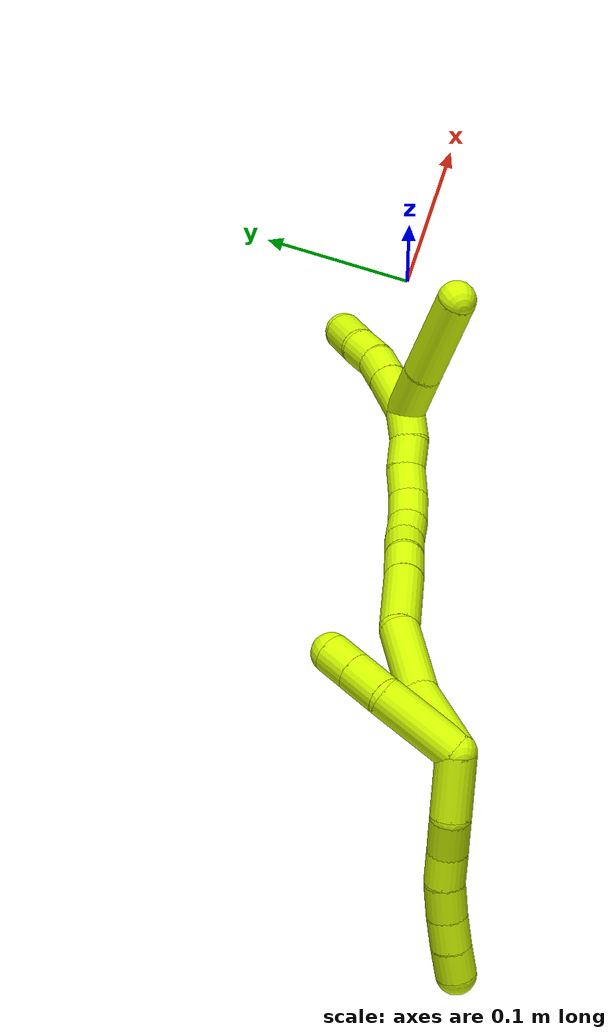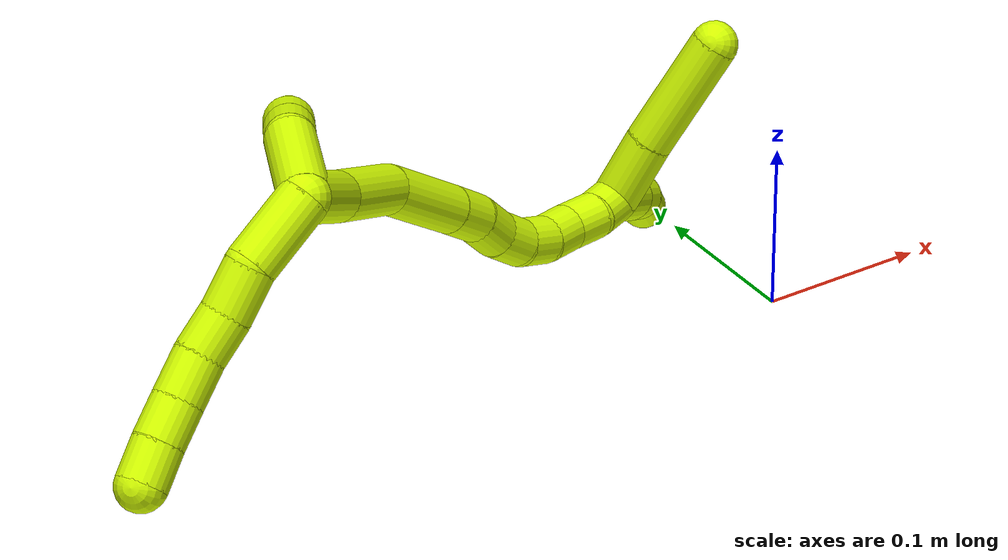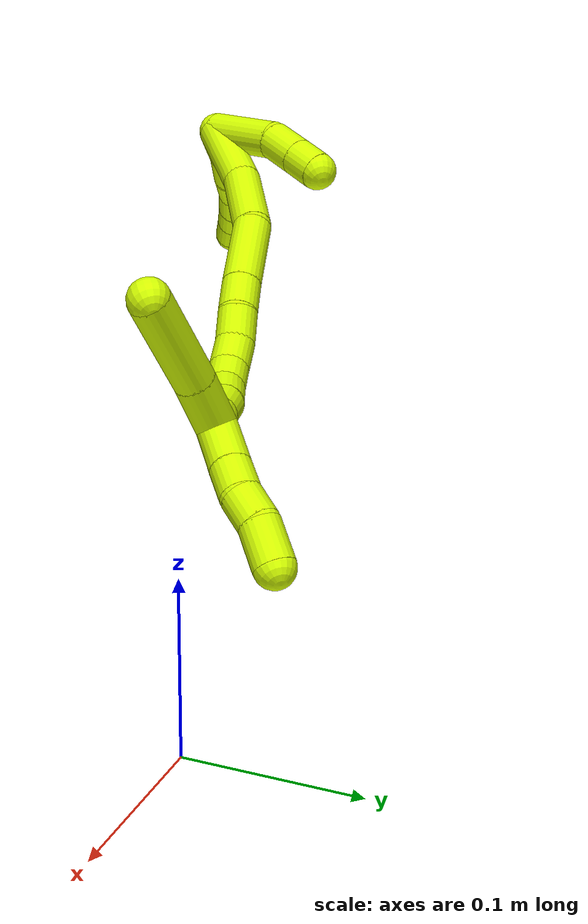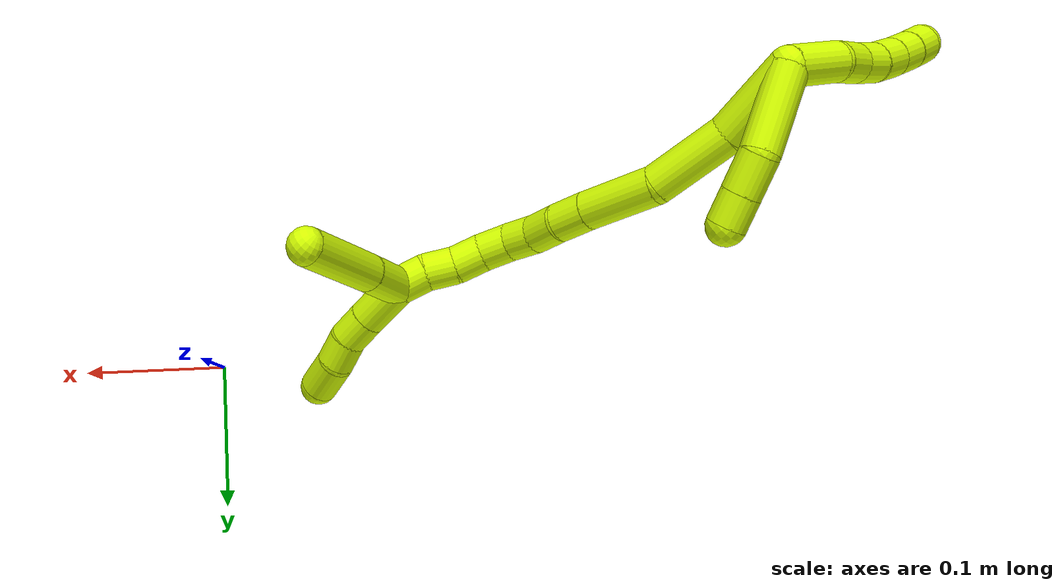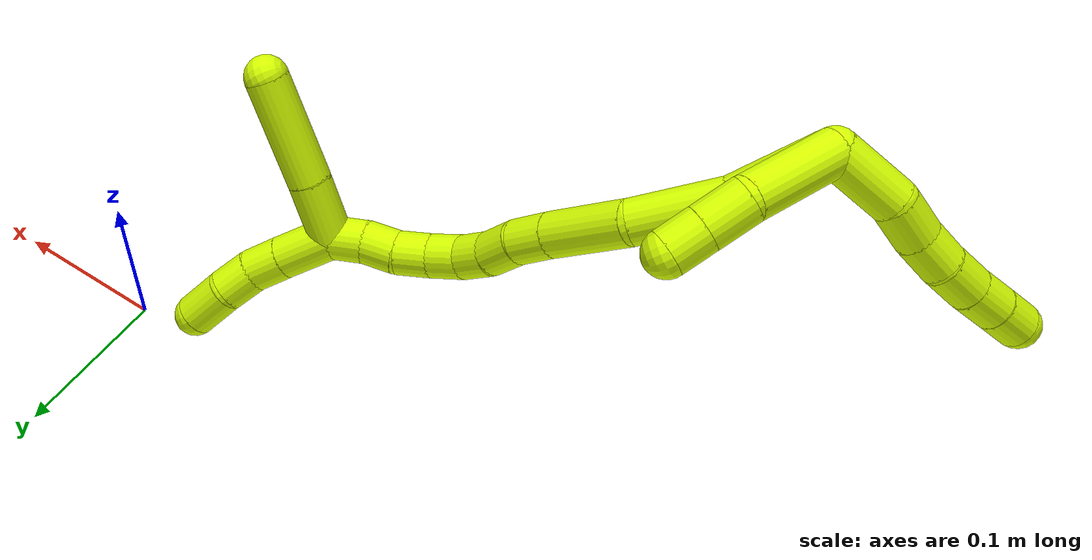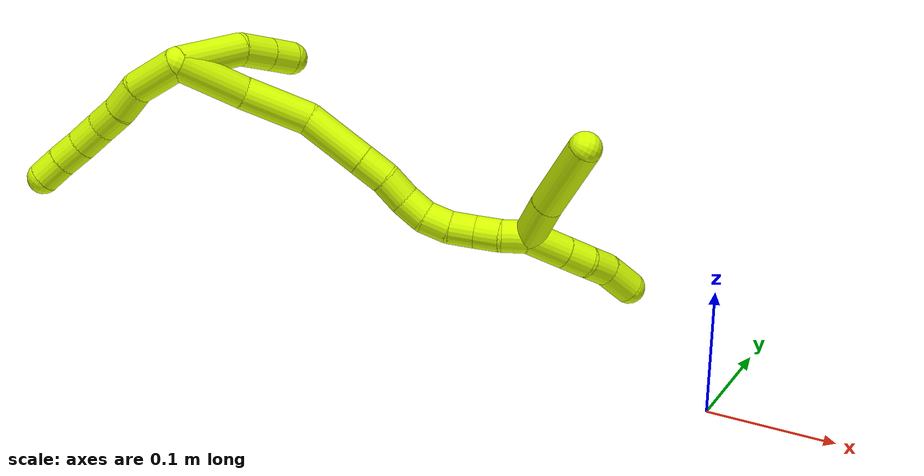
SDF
<sdf version="1.7">
 <world name="default">
  <model name="15">
   <static>0</static>
   <link name="15">
    <collision name="collision-cylinder-e_1_2_8">
     <pose>-0.012814 -0.013511 0.007282 1.07643 -0.695674 -0.426348</pose>
     <geometry><cylinder><radius>0.0125</radius><length>0.039989</length></cylinder></geometry>
     <surface>
      <friction><ode><mu>1.16</mu><mu2>1.16</mu2><slip1>0</slip1><slip2>0</slip2></ode></friction>
      <contact><ode><kp>1e+06</kp><kd>1</kd><max_vel>0</max_vel><min_depth>0.001</min_depth></ode></contact>
     </surface>
    </collision>
    <visual name="visual-cylinder-e_1_2_8">
     <pose>-0.012814 -0.013511 0.007282 1.07643 -0.695674 -0.426348</pose>
     <geometry><cylinder><radius>0.0125</radius><length>0.039989</length></cylinder></geometry>
     <material><ambient>0.835294 1 0 1</ambient></material>
    </visual>
    <collision name="collision-cylinder-e_2_8_9">
     <pose>-0.032824 -0.037021 0.015845 1.44344 -0.619861 -0.54946</pose>
     <geometry><cylinder><radius>0.0125</radius><length>0.024772</length></cylinder></geometry>
     <surface>
      <friction><ode><mu>1.16</mu><mu2>1.16</mu2><slip1>0</slip1><slip2>0</slip2></ode></friction>
      <contact><ode><kp>1e+06</kp><kd>1</kd><max_vel>0</max_vel><min_depth>0.001</min_depth></ode></contact>
     </surface>
    </collision>
    <visual name="visual-cylinder-e_2_8_9">
     <pose>-0.032824 -0.037021 0.015845 1.44344 -0.619861 -0.54946</pose>
     <geometry><cylinder><radius>0.0125</radius><length>0.024772</length></cylinder></geometry>
     <material><ambient>0.835294 1 0 1</ambient></material>
    </visual>
    <collision name="collision-cylinder-e_3_9_10">
     <pose>-0.046743 -0.055071 0.019637 1.26838 -0.673101 -0.503752</pose>
     <geometry><cylinder><radius>0.0125</radius><length>0.02157</length></cylinder></geometry>
     <surface>
      <friction><ode><mu>1.16</mu><mu2>1.16</mu2><slip1>0</slip1><slip2>0</slip2></ode></friction>
      <contact><ode><kp>1e+06</kp><kd>1</kd><max_vel>0</max_vel><min_depth>0.001</min_depth></ode></contact>
     </surface>
    </collision>
    <visual name="visual-cylinder-e_3_9_10">
     <pose>-0.046743 -0.055071 0.019637 1.26838 -0.673101 -0.503752</pose>
     <geometry><cylinder><radius>0.0125</radius><length>0.02157</length></cylinder></geometry>
     <material><ambient>0.835294 1 0 1</ambient></material>
    </visual>
    <collision name="collision-cylinder-e_4_10_11">
     <pose>-0.05908 -0.072346 0.025241 1.24735 -0.523264 -0.380641</pose>
     <geometry><cylinder><radius>0.0125</radius><length>0.022464</length></cylinder></geometry>
     <surface>
      <friction><ode><mu>1.16</mu><mu2>1.16</mu2><slip1>0</slip1><slip2>0</slip2></ode></friction>
      <contact><ode><kp>1e+06</kp><kd>1</kd><max_vel>0</max_vel><min_depth>0.001</min_depth></ode></contact>
     </surface>
    </collision>
    <visual name="visual-cylinder-e_4_10_11">
     <pose>-0.05908 -0.072346 0.025241 1.24735 -0.523264 -0.380641</pose>
     <geometry><cylinder><radius>0.0125</radius><length>0.022464</length></cylinder></geometry>
     <material><ambient>0.835294 1 0 1</ambient></material>
    </visual>
    <collision name="collision-cylinder-e_5_11_12">
     <pose>-0.069505 -0.090099 0.031776 1.18712 -0.482115 -0.328754</pose>
     <geometry><cylinder><radius>0.0125</radius><length>0.020761</length></cylinder></geometry>
     <surface>
      <friction><ode><mu>1.16</mu><mu2>1.16</mu2><slip1>0</slip1><slip2>0</slip2></ode></friction>
      <contact><ode><kp>1e+06</kp><kd>1</kd><max_vel>0</max_vel><min_depth>0.001</min_depth></ode></contact>
     </surface>
    </collision>
    <visual name="visual-cylinder-e_5_11_12">
     <pose>-0.069505 -0.090099 0.031776 1.18712 -0.482115 -0.328754</pose>
     <geometry><cylinder><radius>0.0125</radius><length>0.020761</length></cylinder></geometry>
     <material><ambient>0.835294 1 0 1</ambient></material>
    </visual>
    <collision name="collision-cylinder-e_6_12_6">
     <pose>-0.078654 -0.107349 0.038322 1.22891 -0.438056 -0.311573</pose>
     <geometry><cylinder><radius>0.0125</radius><length>0.020444</length></cylinder></geometry>
     <surface>
      <friction><ode><mu>1.16</mu><mu2>1.16</mu2><slip1>0</slip1><slip2>0</slip2></ode></friction>
      <contact><ode><kp>1e+06</kp><kd>1</kd><max_vel>0</max_vel><min_depth>0.001</min_depth></ode></contact>
     </surface>
    </collision>
    <visual name="visual-cylinder-e_6_12_6">
     <pose>-0.078654 -0.107349 0.038322 1.22891 -0.438056 -0.311573</pose>
     <geometry><cylinder><radius>0.0125</radius><length>0.020444</length></cylinder></geometry>
     <material><ambient>0.835294 1 0 1</ambient></material>
    </visual>
    <collision name="collision-cylinder-e_1_2_13">
     <pose>-0.008283 0.015268 -0.020802 -2.50843 -0.310614 0.891669</pose>
     <geometry><cylinder><radius>0.0125</radius><length>0.054201</length></cylinder></geometry>
     <surface>
      <friction><ode><mu>1.16</mu><mu2>1.16</mu2><slip1>0</slip1><slip2>0</slip2></ode></friction>
      <contact><ode><kp>1e+06</kp><kd>1</kd><max_vel>0</max_vel><min_depth>0.001</min_depth></ode></contact>
     </surface>
    </collision>
    <visual name="visual-cylinder-e_1_2_13">
     <pose>-0.008283 0.015268 -0.020802 -2.50843 -0.310614 0.891669</pose>
     <geometry><cylinder><radius>0.0125</radius><length>0.054201</length></cylinder></geometry>
     <material><ambient>0.835294 1 0 1</ambient></material>
    </visual>
    <collision name="collision-cylinder-e_2_13_14">
     <pose>-0.020344 0.033878 -0.053236 -2.86185 -0.302528 1.65014</pose>
     <geometry><cylinder><radius>0.0125</radius><length>0.025357</length></cylinder></geometry>
     <surface>
      <friction><ode><mu>1.16</mu><mu2>1.16</mu2><slip1>0</slip1><slip2>0</slip2></ode></friction>
      <contact><ode><kp>1e+06</kp><kd>1</kd><max_vel>0</max_vel><min_depth>0.001</min_depth></ode></contact>
     </surface>
    </collision>
    <visual name="visual-cylinder-e_2_13_14">
     <pose>-0.020344 0.033878 -0.053236 -2.86185 -0.302528 1.65014</pose>
     <geometry><cylinder><radius>0.0125</radius><length>0.025357</length></cylinder></geometry>
     <material><ambient>0.835294 1 0 1</ambient></material>
    </visual>
    <collision name="collision-cylinder-e_3_14_5">
     <pose>-0.027172 0.039838 -0.074265 -2.86979 -0.303176 1.68132</pose>
     <geometry><cylinder><radius>0.0125</radius><length>0.020442</length></cylinder></geometry>
     <surface>
      <friction><ode><mu>1.16</mu><mu2>1.16</mu2><slip1>0</slip1><slip2>0</slip2></ode></friction>
      <contact><ode><kp>1e+06</kp><kd>1</kd><max_vel>0</max_vel><min_depth>0.001</min_depth></ode></contact>
     </surface>
    </collision>
    <visual name="visual-cylinder-e_3_14_5">
     <pose>-0.027172 0.039838 -0.074265 -2.86979 -0.303176 1.68132</pose>
     <geometry><cylinder><radius>0.0125</radius><length>0.020442</length></cylinder></geometry>
     <material><ambient>0.835294 1 0 1</ambient></material>
    </visual>
    <collision name="collision-cylinder-e_1_2_15">
     <pose>-0.00149 0.000555 -0.026801 -3.1209 -0.055523 2.42829</pose>
     <geometry><cylinder><radius>0.0125</radius><length>0.053697</length></cylinder></geometry>
     <surface>
      <friction><ode><mu>1.16</mu><mu2>1.16</mu2><slip1>0</slip1><slip2>0</slip2></ode></friction>
      <contact><ode><kp>1e+06</kp><kd>1</kd><max_vel>0</max_vel><min_depth>0.001</min_depth></ode></contact>
     </surface>
    </collision>
    <visual name="visual-cylinder-e_1_2_15">
     <pose>-0.00149 0.000555 -0.026801 -3.1209 -0.055523 2.42829</pose>
     <geometry><cylinder><radius>0.0125</radius><length>0.053697</length></cylinder></geometry>
     <material><ambient>0.835294 1 0 1</ambient></material>
    </visual>
    <collision name="collision-cylinder-e_2_15_16">
     <pose>0.001627 0.002286 -0.079423 -3.09607 0.176372 -2.63754</pose>
     <geometry><cylinder><radius>0.0125</radius><length>0.052509</length></cylinder></geometry>
     <surface>
      <friction><ode><mu>1.16</mu><mu2>1.16</mu2><slip1>0</slip1><slip2>0</slip2></ode></friction>
      <contact><ode><kp>1e+06</kp><kd>1</kd><max_vel>0</max_vel><min_depth>0.001</min_depth></ode></contact>
     </surface>
    </collision>
    <visual name="visual-cylinder-e_2_15_16">
     <pose>0.001627 0.002286 -0.079423 -3.09607 0.176372 -2.63754</pose>
     <geometry><cylinder><radius>0.0125</radius><length>0.052509</length></cylinder></geometry>
     <material><ambient>0.835294 1 0 1</ambient></material>
    </visual>
    <collision name="collision-cylinder-e_3_16_17">
     <pose>0.014084 -0.002639 -0.127937 2.87899 0.322431 1.77749</pose>
     <geometry><cylinder><radius>0.0125</radius><length>0.049553</length></cylinder></geometry>
     <surface>
      <friction><ode><mu>1.16</mu><mu2>1.16</mu2><slip1>0</slip1><slip2>0</slip2></ode></friction>
      <contact><ode><kp>1e+06</kp><kd>1</kd><max_vel>0</max_vel><min_depth>0.001</min_depth></ode></contact>
     </surface>
    </collision>
    <visual name="visual-cylinder-e_3_16_17">
     <pose>0.014084 -0.002639 -0.127937 2.87899 0.322431 1.77749</pose>
     <geometry><cylinder><radius>0.0125</radius><length>0.049553</length></cylinder></geometry>
     <material><ambient>0.835294 1 0 1</ambient></material>
    </visual>
    <collision name="collision-cylinder-e_4_17_18">
     <pose>0.025064 -0.011512 -0.161147 2.88381 0.280152 1.65492</pose>
     <geometry><cylinder><radius>0.0125</radius><length>0.022632</length></cylinder></geometry>
     <surface>
      <friction><ode><mu>1.16</mu><mu2>1.16</mu2><slip1>0</slip1><slip2>0</slip2></ode></friction>
      <contact><ode><kp>1e+06</kp><kd>1</kd><max_vel>0</max_vel><min_depth>0.001</min_depth></ode></contact>
     </surface>
    </collision>
    <visual name="visual-cylinder-e_4_17_18">
     <pose>0.025064 -0.011512 -0.161147 2.88381 0.280152 1.65492</pose>
     <geometry><cylinder><radius>0.0125</radius><length>0.022632</length></cylinder></geometry>
     <material><ambient>0.835294 1 0 1</ambient></material>
    </visual>
    <collision name="collision-cylinder-e_5_18_19">
     <pose>0.029975 -0.018563 -0.181416 2.72813 0.165728 0.754125</pose>
     <geometry><cylinder><radius>0.0125</radius><length>0.021599</length></cylinder></geometry>
     <surface>
      <friction><ode><mu>1.16</mu><mu2>1.16</mu2><slip1>0</slip1><slip2>0</slip2></ode></friction>
      <contact><ode><kp>1e+06</kp><kd>1</kd><max_vel>0</max_vel><min_depth>0.001</min_depth></ode></contact>
     </surface>
    </collision>
    <visual name="visual-cylinder-e_5_18_19">
     <pose>0.029975 -0.018563 -0.181416 2.72813 0.165728 0.754125</pose>
     <geometry><cylinder><radius>0.0125</radius><length>0.021599</length></cylinder></geometry>
     <material><ambient>0.835294 1 0 1</ambient></material>
    </visual>
    <collision name="collision-cylinder-e_6_19_20">
     <pose>0.035151 -0.025798 -0.200103 2.82208 0.346234 1.65252</pose>
     <geometry><cylinder><radius>0.0125</radius><length>0.020005</length></cylinder></geometry>
     <surface>
      <friction><ode><mu>1.16</mu><mu2>1.16</mu2><slip1>0</slip1><slip2>0</slip2></ode></friction>
      <contact><ode><kp>1e+06</kp><kd>1</kd><max_vel>0</max_vel><min_depth>0.001</min_depth></ode></contact>
     </surface>
    </collision>
    <visual name="visual-cylinder-e_6_19_20">
     <pose>0.035151 -0.025798 -0.200103 2.82208 0.346234 1.65252</pose>
     <geometry><cylinder><radius>0.0125</radius><length>0.020005</length></cylinder></geometry>
     <material><ambient>0.835294 1 0 1</ambient></material>
    </visual>
    <collision name="collision-cylinder-e_7_20_21">
     <pose>0.042728 -0.028713 -0.218121 -3.13713 0.431515 -3.12125</pose>
     <geometry><cylinder><radius>0.0125</radius><length>0.020004</length></cylinder></geometry>
     <surface>
      <friction><ode><mu>1.16</mu><mu2>1.16</mu2><slip1>0</slip1><slip2>0</slip2></ode></friction>
      <contact><ode><kp>1e+06</kp><kd>1</kd><max_vel>0</max_vel><min_depth>0.001</min_depth></ode></contact>
     </surface>
    </collision>
    <visual name="visual-cylinder-e_7_20_21">
     <pose>0.042728 -0.028713 -0.218121 -3.13713 0.431515 -3.12125</pose>
     <geometry><cylinder><radius>0.0125</radius><length>0.020004</length></cylinder></geometry>
     <material><ambient>0.835294 1 0 1</ambient></material>
    </visual>
    <collision name="collision-cylinder-e_8_21_22">
     <pose>0.051029 -0.026303 -0.236006 -2.87854 0.424351 -2.04012</pose>
     <geometry><cylinder><radius>0.0125</radius><length>0.020001</length></cylinder></geometry>
     <surface>
      <friction><ode><mu>1.16</mu><mu2>1.16</mu2><slip1>0</slip1><slip2>0</slip2></ode></friction>
      <contact><ode><kp>1e+06</kp><kd>1</kd><max_vel>0</max_vel><min_depth>0.001</min_depth></ode></contact>
     </surface>
    </collision>
    <visual name="visual-cylinder-e_8_21_22">
     <pose>0.051029 -0.026303 -0.236006 -2.87854 0.424351 -2.04012</pose>
     <geometry><cylinder><radius>0.0125</radius><length>0.020001</length></cylinder></geometry>
     <material><ambient>0.835294 1 0 1</ambient></material>
    </visual>
    <collision name="collision-cylinder-e_9_22_23">
     <pose>0.061133 -0.021625 -0.252476 -2.8493 0.641842 -2.30788</pose>
     <geometry><cylinder><radius>0.0125</radius><length>0.02</length></cylinder></geometry>
     <surface>
      <friction><ode><mu>1.16</mu><mu2>1.16</mu2><slip1>0</slip1><slip2>0</slip2></ode></friction>
      <contact><ode><kp>1e+06</kp><kd>1</kd><max_vel>0</max_vel><min_depth>0.001</min_depth></ode></contact>
     </surface>
    </collision>
    <visual name="visual-cylinder-e_9_22_23">
     <pose>0.061133 -0.021625 -0.252476 -2.8493 0.641842 -2.30788</pose>
     <geometry><cylinder><radius>0.0125</radius><length>0.02</length></cylinder></geometry>
     <material><ambient>0.835294 1 0 1</ambient></material>
    </visual>
    <collision name="collision-cylinder-e_10_23_1">
     <pose>0.071177 -0.015705 -0.268542 -2.73532 0.417745 -1.59943</pose>
     <geometry><cylinder><radius>0.0125</radius><length>0.020001</length></cylinder></geometry>
     <surface>
      <friction><ode><mu>1.16</mu><mu2>1.16</mu2><slip1>0</slip1><slip2>0</slip2></ode></friction>
      <contact><ode><kp>1e+06</kp><kd>1</kd><max_vel>0</max_vel><min_depth>0.001</min_depth></ode></contact>
     </surface>
    </collision>
    <visual name="visual-cylinder-e_10_23_1">
     <pose>0.071177 -0.015705 -0.268542 -2.73532 0.417745 -1.59943</pose>
     <geometry><cylinder><radius>0.0125</radius><length>0.020001</length></cylinder></geometry>
     <material><ambient>0.835294 1 0 1</ambient></material>
    </visual>
    <collision name="collision-cylinder-e_1_1_24">
     <pose>0.087847 0.000946 -0.272991 -1.27677 0.746922 -0.565931</pose>
     <geometry><cylinder><radius>0.0125</radius><length>0.03713</length></cylinder></geometry>
     <surface>
      <friction><ode><mu>1.16</mu><mu2>1.16</mu2><slip1>0</slip1><slip2>0</slip2></ode></friction>
      <contact><ode><kp>1e+06</kp><kd>1</kd><max_vel>0</max_vel><min_depth>0.001</min_depth></ode></contact>
     </surface>
    </collision>
    <visual name="visual-cylinder-e_1_1_24">
     <pose>0.087847 0.000946 -0.272991 -1.27677 0.746922 -0.565931</pose>
     <geometry><cylinder><radius>0.0125</radius><length>0.03713</length></cylinder></geometry>
     <material><ambient>0.835294 1 0 1</ambient></material>
    </visual>
    <collision name="collision-cylinder-e_2_24_4">
     <pose>0.122914 0.03531 -0.263644 -1.32288 0.795625 -0.632264</pose>
     <geometry><cylinder><radius>0.0125</radius><length>0.06287</length></cylinder></geometry>
     <surface>
      <friction><ode><mu>1.16</mu><mu2>1.16</mu2><slip1>0</slip1><slip2>0</slip2></ode></friction>
      <contact><ode><kp>1e+06</kp><kd>1</kd><max_vel>0</max_vel><min_depth>0.001</min_depth></ode></contact>
     </surface>
    </collision>
    <visual name="visual-cylinder-e_2_24_4">
     <pose>0.122914 0.03531 -0.263644 -1.32288 0.795625 -0.632264</pose>
     <geometry><cylinder><radius>0.0125</radius><length>0.06287</length></cylinder></geometry>
     <material><ambient>0.835294 1 0 1</ambient></material>
    </visual>
    <collision name="collision-cylinder-e_1_1_25">
     <pose>0.075617 -0.011594 -0.292962 -3.11046 0.023854 -1.30766</pose>
     <geometry><cylinder><radius>0.0125</radius><length>0.03207</length></cylinder></geometry>
     <surface>
      <friction><ode><mu>1.16</mu><mu2>1.16</mu2><slip1>0</slip1><slip2>0</slip2></ode></friction>
      <contact><ode><kp>1e+06</kp><kd>1</kd><max_vel>0</max_vel><min_depth>0.001</min_depth></ode></contact>
     </surface>
    </collision>
    <visual name="visual-cylinder-e_1_1_25">
     <pose>0.075617 -0.011594 -0.292962 -3.11046 0.023854 -1.30766</pose>
     <geometry><cylinder><radius>0.0125</radius><length>0.03207</length></cylinder></geometry>
     <material><ambient>0.835294 1 0 1</ambient></material>
    </visual>
    <collision name="collision-cylinder-e_2_25_26">
     <pose>0.07601 -0.010738 -0.319374 -3.10726 0.001019 -0.059335</pose>
     <geometry><cylinder><radius>0.0125</radius><length>0.020791</length></cylinder></geometry>
     <surface>
      <friction><ode><mu>1.16</mu><mu2>1.16</mu2><slip1>0</slip1><slip2>0</slip2></ode></friction>
      <contact><ode><kp>1e+06</kp><kd>1</kd><max_vel>0</max_vel><min_depth>0.001</min_depth></ode></contact>
     </surface>
    </collision>
    <visual name="visual-cylinder-e_2_25_26">
     <pose>0.07601 -0.010738 -0.319374 -3.10726 0.001019 -0.059335</pose>
     <geometry><cylinder><radius>0.0125</radius><length>0.020791</length></cylinder></geometry>
     <material><ambient>0.835294 1 0 1</ambient></material>
    </visual>
    <collision name="collision-cylinder-e_3_26_27">
     <pose>0.073637 -0.009818 -0.339703 -3.08498 -0.234961 2.67072</pose>
     <geometry><cylinder><radius>0.0125</radius><length>0.020474</length></cylinder></geometry>
     <surface>
      <friction><ode><mu>1.16</mu><mu2>1.16</mu2><slip1>0</slip1><slip2>0</slip2></ode></friction>
      <contact><ode><kp>1e+06</kp><kd>1</kd><max_vel>0</max_vel><min_depth>0.001</min_depth></ode></contact>
     </surface>
    </collision>
    <visual name="visual-cylinder-e_3_26_27">
     <pose>0.073637 -0.009818 -0.339703 -3.08498 -0.234961 2.67072</pose>
     <geometry><cylinder><radius>0.0125</radius><length>0.020474</length></cylinder></geometry>
     <material><ambient>0.835294 1 0 1</ambient></material>
    </visual>
    <collision name="collision-cylinder-e_4_27_3">
     <pose>0.069224 -0.011667 -0.362597 2.95745 -0.152868 -1.38487</pose>
     <geometry><cylinder><radius>0.0125</radius><length>0.026665</length></cylinder></geometry>
     <surface>
      <friction><ode><mu>1.16</mu><mu2>1.16</mu2><slip1>0</slip1><slip2>0</slip2></ode></friction>
      <contact><ode><kp>1e+06</kp><kd>1</kd><max_vel>0</max_vel><min_depth>0.001</min_depth></ode></contact>
     </surface>
    </collision>
    <visual name="visual-cylinder-e_4_27_3">
     <pose>0.069224 -0.011667 -0.362597 2.95745 -0.152868 -1.38487</pose>
     <geometry><cylinder><radius>0.0125</radius><length>0.026665</length></cylinder></geometry>
     <material><ambient>0.835294 1 0 1</ambient></material>
    </visual>
    <collision name="collision-sphere-3">
     <pose>0.067194 -0.01408 -0.375551 0 -0 0</pose>
     <geometry><sphere><radius>0.0125</radius></sphere></geometry>
     <surface>
      <friction><ode><mu>1.16</mu><mu2>1.16</mu2><slip1>0</slip1><slip2>0</slip2></ode></friction>
      <contact><ode><kp>1e+06</kp><kd>1</kd><max_vel>0</max_vel><min_depth>0.001</min_depth></ode></contact>
     </surface>
    </collision>
    <visual name="visual-sphere-3">
     <pose>0.067194 -0.01408 -0.375551 0 -0 0</pose>
     <geometry><sphere><radius>0.0125</radius></sphere></geometry>
     <material><ambient>0.835294 1 0 1</ambient></material>
    </visual>
    <collision name="collision-sphere-27">
     <pose>0.071254 -0.009254 -0.349643 0 -0 0</pose>
     <geometry><sphere><radius>0.0125</radius></sphere></geometry>
     <surface>
      <friction><ode><mu>1.16</mu><mu2>1.16</mu2><slip1>0</slip1><slip2>0</slip2></ode></friction>
      <contact><ode><kp>1e+06</kp><kd>1</kd><max_vel>0</max_vel><min_depth>0.001</min_depth></ode></contact>
     </surface>
    </collision>
    <visual name="visual-sphere-27">
     <pose>0.071254 -0.009254 -0.349643 0 -0 0</pose>
     <geometry><sphere><radius>0.0125</radius></sphere></geometry>
     <material><ambient>0.835294 1 0 1</ambient></material>
    </visual>
    <collision name="collision-sphere-26">
     <pose>0.07602 -0.010381 -0.329763 0 -0 0</pose>
     <geometry><sphere><radius>0.0125</radius></sphere></geometry>
     <surface>
      <friction><ode><mu>1.16</mu><mu2>1.16</mu2><slip1>0</slip1><slip2>0</slip2></ode></friction>
      <contact><ode><kp>1e+06</kp><kd>1</kd><max_vel>0</max_vel><min_depth>0.001</min_depth></ode></contact>
     </surface>
    </collision>
    <visual name="visual-sphere-26">
     <pose>0.07602 -0.010381 -0.329763 0 -0 0</pose>
     <geometry><sphere><radius>0.0125</radius></sphere></geometry>
     <material><ambient>0.835294 1 0 1</ambient></material>
    </visual>
    <collision name="collision-sphere-25">
     <pose>0.075999 -0.011095 -0.308984 0 -0 0</pose>
     <geometry><sphere><radius>0.0125</radius></sphere></geometry>
     <surface>
      <friction><ode><mu>1.16</mu><mu2>1.16</mu2><slip1>0</slip1><slip2>0</slip2></ode></friction>
      <contact><ode><kp>1e+06</kp><kd>1</kd><max_vel>0</max_vel><min_depth>0.001</min_depth></ode></contact>
     </surface>
    </collision>
    <visual name="visual-sphere-25">
     <pose>0.075999 -0.011095 -0.308984 0 -0 0</pose>
     <geometry><sphere><radius>0.0125</radius></sphere></geometry>
     <material><ambient>0.835294 1 0 1</ambient></material>
    </visual>
    <collision name="collision-sphere-4">
     <pose>0.145368 0.056637 -0.258246 0 -0 0</pose>
     <geometry><sphere><radius>0.0125</radius></sphere></geometry>
     <surface>
      <friction><ode><mu>1.16</mu><mu2>1.16</mu2><slip1>0</slip1><slip2>0</slip2></ode></friction>
      <contact><ode><kp>1e+06</kp><kd>1</kd><max_vel>0</max_vel><min_depth>0.001</min_depth></ode></contact>
     </surface>
    </collision>
    <visual name="visual-sphere-4">
     <pose>0.145368 0.056637 -0.258246 0 -0 0</pose>
     <geometry><sphere><radius>0.0125</radius></sphere></geometry>
     <material><ambient>0.835294 1 0 1</ambient></material>
    </visual>
    <collision name="collision-sphere-24">
     <pose>0.10046 0.013984 -0.269043 0 -0 0</pose>
     <geometry><sphere><radius>0.0125</radius></sphere></geometry>
     <surface>
      <friction><ode><mu>1.16</mu><mu2>1.16</mu2><slip1>0</slip1><slip2>0</slip2></ode></friction>
      <contact><ode><kp>1e+06</kp><kd>1</kd><max_vel>0</max_vel><min_depth>0.001</min_depth></ode></contact>
     </surface>
    </collision>
    <visual name="visual-sphere-24">
     <pose>0.10046 0.013984 -0.269043 0 -0 0</pose>
     <geometry><sphere><radius>0.0125</radius></sphere></geometry>
     <material><ambient>0.835294 1 0 1</ambient></material>
    </visual>
    <collision name="collision-sphere-1">
     <pose>0.075234 -0.012093 -0.276939 0 -0 0</pose>
     <geometry><sphere><radius>0.0125</radius></sphere></geometry>
     <surface>
      <friction><ode><mu>1.16</mu><mu2>1.16</mu2><slip1>0</slip1><slip2>0</slip2></ode></friction>
      <contact><ode><kp>1e+06</kp><kd>1</kd><max_vel>0</max_vel><min_depth>0.001</min_depth></ode></contact>
     </surface>
    </collision>
    <visual name="visual-sphere-1">
     <pose>0.075234 -0.012093 -0.276939 0 -0 0</pose>
     <geometry><sphere><radius>0.0125</radius></sphere></geometry>
     <material><ambient>0.835294 1 0 1</ambient></material>
    </visual>
    <collision name="collision-sphere-23">
     <pose>0.06712 -0.019317 -0.260146 0 -0 0</pose>
     <geometry><sphere><radius>0.0125</radius></sphere></geometry>
     <surface>
      <friction><ode><mu>1.16</mu><mu2>1.16</mu2><slip1>0</slip1><slip2>0</slip2></ode></friction>
      <contact><ode><kp>1e+06</kp><kd>1</kd><max_vel>0</max_vel><min_depth>0.001</min_depth></ode></contact>
     </surface>
    </collision>
    <visual name="visual-sphere-23">
     <pose>0.06712 -0.019317 -0.260146 0 -0 0</pose>
     <geometry><sphere><radius>0.0125</radius></sphere></geometry>
     <material><ambient>0.835294 1 0 1</ambient></material>
    </visual>
    <collision name="collision-sphere-22">
     <pose>0.055147 -0.023933 -0.244806 0 -0 0</pose>
     <geometry><sphere><radius>0.0125</radius></sphere></geometry>
     <surface>
      <friction><ode><mu>1.16</mu><mu2>1.16</mu2><slip1>0</slip1><slip2>0</slip2></ode></friction>
      <contact><ode><kp>1e+06</kp><kd>1</kd><max_vel>0</max_vel><min_depth>0.001</min_depth></ode></contact>
     </surface>
    </collision>
    <visual name="visual-sphere-22">
     <pose>0.055147 -0.023933 -0.244806 0 -0 0</pose>
     <geometry><sphere><radius>0.0125</radius></sphere></geometry>
     <material><ambient>0.835294 1 0 1</ambient></material>
    </visual>
    <collision name="collision-sphere-21">
     <pose>0.046912 -0.028673 -0.227206 0 -0 0</pose>
     <geometry><sphere><radius>0.0125</radius></sphere></geometry>
     <surface>
      <friction><ode><mu>1.16</mu><mu2>1.16</mu2><slip1>0</slip1><slip2>0</slip2></ode></friction>
      <contact><ode><kp>1e+06</kp><kd>1</kd><max_vel>0</max_vel><min_depth>0.001</min_depth></ode></contact>
     </surface>
    </collision>
    <visual name="visual-sphere-21">
     <pose>0.046912 -0.028673 -0.227206 0 -0 0</pose>
     <geometry><sphere><radius>0.0125</radius></sphere></geometry>
     <material><ambient>0.835294 1 0 1</ambient></material>
    </visual>
    <collision name="collision-sphere-12">
     <pose>-0.074318 -0.098627 0.035219 0 -0 0</pose>
     <geometry><sphere><radius>0.0125</radius></sphere></geometry>
     <surface>
      <friction><ode><mu>1.16</mu><mu2>1.16</mu2><slip1>0</slip1><slip2>0</slip2></ode></friction>
      <contact><ode><kp>1e+06</kp><kd>1</kd><max_vel>0</max_vel><min_depth>0.001</min_depth></ode></contact>
     </surface>
    </collision>
    <visual name="visual-sphere-12">
     <pose>-0.074318 -0.098627 0.035219 0 -0 0</pose>
     <geometry><sphere><radius>0.0125</radius></sphere></geometry>
     <material><ambient>0.835294 1 0 1</ambient></material>
    </visual>
    <collision name="collision-sphere-11">
     <pose>-0.064692 -0.081571 0.028333 0 -0 0</pose>
     <geometry><sphere><radius>0.0125</radius></sphere></geometry>
     <surface>
      <friction><ode><mu>1.16</mu><mu2>1.16</mu2><slip1>0</slip1><slip2>0</slip2></ode></friction>
      <contact><ode><kp>1e+06</kp><kd>1</kd><max_vel>0</max_vel><min_depth>0.001</min_depth></ode></contact>
     </surface>
    </collision>
    <visual name="visual-sphere-11">
     <pose>-0.064692 -0.081571 0.028333 0 -0 0</pose>
     <geometry><sphere><radius>0.0125</radius></sphere></geometry>
     <material><ambient>0.835294 1 0 1</ambient></material>
    </visual>
    <collision name="collision-sphere-10">
     <pose>-0.053467 -0.063122 0.022149 0 -0 0</pose>
     <geometry><sphere><radius>0.0125</radius></sphere></geometry>
     <surface>
      <friction><ode><mu>1.16</mu><mu2>1.16</mu2><slip1>0</slip1><slip2>0</slip2></ode></friction>
      <contact><ode><kp>1e+06</kp><kd>1</kd><max_vel>0</max_vel><min_depth>0.001</min_depth></ode></contact>
     </surface>
    </collision>
    <visual name="visual-sphere-10">
     <pose>-0.053467 -0.063122 0.022149 0 -0 0</pose>
     <geometry><sphere><radius>0.0125</radius></sphere></geometry>
     <material><ambient>0.835294 1 0 1</ambient></material>
    </visual>
    <collision name="collision-sphere-9">
     <pose>-0.04002 -0.047021 0.017126 0 -0 0</pose>
     <geometry><sphere><radius>0.0125</radius></sphere></geometry>
     <surface>
      <friction><ode><mu>1.16</mu><mu2>1.16</mu2><slip1>0</slip1><slip2>0</slip2></ode></friction>
      <contact><ode><kp>1e+06</kp><kd>1</kd><max_vel>0</max_vel><min_depth>0.001</min_depth></ode></contact>
     </surface>
    </collision>
    <visual name="visual-sphere-9">
     <pose>-0.04002 -0.047021 0.017126 0 -0 0</pose>
     <geometry><sphere><radius>0.0125</radius></sphere></geometry>
     <material><ambient>0.835294 1 0 1</ambient></material>
    </visual>
    <collision name="collision-sphere-2">
     <geometry><sphere><radius>0.0125</radius></sphere></geometry>
     <surface>
      <friction><ode><mu>1.16</mu><mu2>1.16</mu2><slip1>0</slip1><slip2>0</slip2></ode></friction>
      <contact><ode><kp>1e+06</kp><kd>1</kd><max_vel>0</max_vel><min_depth>0.001</min_depth></ode></contact>
     </surface>
    </collision>
    <visual name="visual-sphere-2">
     <geometry><sphere><radius>0.0125</radius></sphere></geometry>
     <material><ambient>0.835294 1 0 1</ambient></material>
    </visual>
    <collision name="collision-sphere-19">
     <pose>0.031756 -0.022843 -0.19117 0 -0 0</pose>
     <geometry><sphere><radius>0.0125</radius></sphere></geometry>
     <surface>
      <friction><ode><mu>1.16</mu><mu2>1.16</mu2><slip1>0</slip1><slip2>0</slip2></ode></friction>
      <contact><ode><kp>1e+06</kp><kd>1</kd><max_vel>0</max_vel><min_depth>0.001</min_depth></ode></contact>
     </surface>
    </collision>
    <visual name="visual-sphere-19">
     <pose>0.031756 -0.022843 -0.19117 0 -0 0</pose>
     <geometry><sphere><radius>0.0125</radius></sphere></geometry>
     <material><ambient>0.835294 1 0 1</ambient></material>
    </visual>
    <collision name="collision-sphere-8">
     <pose>-0.025629 -0.027021 0.014564 0 -0 0</pose>
     <geometry><sphere><radius>0.0125</radius></sphere></geometry>
     <surface>
      <friction><ode><mu>1.16</mu><mu2>1.16</mu2><slip1>0</slip1><slip2>0</slip2></ode></friction>
      <contact><ode><kp>1e+06</kp><kd>1</kd><max_vel>0</max_vel><min_depth>0.001</min_depth></ode></contact>
     </surface>
    </collision>
    <visual name="visual-sphere-8">
     <pose>-0.025629 -0.027021 0.014564 0 -0 0</pose>
     <geometry><sphere><radius>0.0125</radius></sphere></geometry>
     <material><ambient>0.835294 1 0 1</ambient></material>
    </visual>
    <collision name="collision-sphere-6">
     <pose>-0.08299 -0.11607 0.041426 0 -0 0</pose>
     <geometry><sphere><radius>0.0125</radius></sphere></geometry>
     <surface>
      <friction><ode><mu>1.16</mu><mu2>1.16</mu2><slip1>0</slip1><slip2>0</slip2></ode></friction>
      <contact><ode><kp>1e+06</kp><kd>1</kd><max_vel>0</max_vel><min_depth>0.001</min_depth></ode></contact>
     </surface>
    </collision>
    <visual name="visual-sphere-6">
     <pose>-0.08299 -0.11607 0.041426 0 -0 0</pose>
     <geometry><sphere><radius>0.0125</radius></sphere></geometry>
     <material><ambient>0.835294 1 0 1</ambient></material>
    </visual>
    <collision name="collision-sphere-13">
     <pose>-0.016566 0.030536 -0.041604 0 -0 0</pose>
     <geometry><sphere><radius>0.0125</radius></sphere></geometry>
     <surface>
      <friction><ode><mu>1.16</mu><mu2>1.16</mu2><slip1>0</slip1><slip2>0</slip2></ode></friction>
      <contact><ode><kp>1e+06</kp><kd>1</kd><max_vel>0</max_vel><min_depth>0.001</min_depth></ode></contact>
     </surface>
    </collision>
    <visual name="visual-sphere-13">
     <pose>-0.016566 0.030536 -0.041604 0 -0 0</pose>
     <geometry><sphere><radius>0.0125</radius></sphere></geometry>
     <material><ambient>0.835294 1 0 1</ambient></material>
    </visual>
    <collision name="collision-sphere-14">
     <pose>-0.024121 0.037219 -0.064868 0 -0 0</pose>
     <geometry><sphere><radius>0.0125</radius></sphere></geometry>
     <surface>
      <friction><ode><mu>1.16</mu><mu2>1.16</mu2><slip1>0</slip1><slip2>0</slip2></ode></friction>
      <contact><ode><kp>1e+06</kp><kd>1</kd><max_vel>0</max_vel><min_depth>0.001</min_depth></ode></contact>
     </surface>
    </collision>
    <visual name="visual-sphere-14">
     <pose>-0.024121 0.037219 -0.064868 0 -0 0</pose>
     <geometry><sphere><radius>0.0125</radius></sphere></geometry>
     <material><ambient>0.835294 1 0 1</ambient></material>
    </visual>
    <collision name="collision-sphere-5">
     <pose>-0.030224 0.042457 -0.083662 0 -0 0</pose>
     <geometry><sphere><radius>0.0125</radius></sphere></geometry>
     <surface>
      <friction><ode><mu>1.16</mu><mu2>1.16</mu2><slip1>0</slip1><slip2>0</slip2></ode></friction>
      <contact><ode><kp>1e+06</kp><kd>1</kd><max_vel>0</max_vel><min_depth>0.001</min_depth></ode></contact>
     </surface>
    </collision>
    <visual name="visual-sphere-5">
     <pose>-0.030224 0.042457 -0.083662 0 -0 0</pose>
     <geometry><sphere><radius>0.0125</radius></sphere></geometry>
     <material><ambient>0.835294 1 0 1</ambient></material>
    </visual>
    <collision name="collision-sphere-15">
     <pose>-0.00298 0.001109 -0.053603 0 -0 0</pose>
     <geometry><sphere><radius>0.0125</radius></sphere></geometry>
     <surface>
      <friction><ode><mu>1.16</mu><mu2>1.16</mu2><slip1>0</slip1><slip2>0</slip2></ode></friction>
      <contact><ode><kp>1e+06</kp><kd>1</kd><max_vel>0</max_vel><min_depth>0.001</min_depth></ode></contact>
     </surface>
    </collision>
    <visual name="visual-sphere-15">
     <pose>-0.00298 0.001109 -0.053603 0 -0 0</pose>
     <geometry><sphere><radius>0.0125</radius></sphere></geometry>
     <material><ambient>0.835294 1 0 1</ambient></material>
    </visual>
    <collision name="collision-sphere-16">
     <pose>0.006233 0.003462 -0.105243 0 -0 0</pose>
     <geometry><sphere><radius>0.0125</radius></sphere></geometry>
     <surface>
      <friction><ode><mu>1.16</mu><mu2>1.16</mu2><slip1>0</slip1><slip2>0</slip2></ode></friction>
      <contact><ode><kp>1e+06</kp><kd>1</kd><max_vel>0</max_vel><min_depth>0.001</min_depth></ode></contact>
     </surface>
    </collision>
    <visual name="visual-sphere-16">
     <pose>0.006233 0.003462 -0.105243 0 -0 0</pose>
     <geometry><sphere><radius>0.0125</radius></sphere></geometry>
     <material><ambient>0.835294 1 0 1</ambient></material>
    </visual>
    <collision name="collision-sphere-17">
     <pose>0.021935 -0.008739 -0.150631 0 -0 0</pose>
     <geometry><sphere><radius>0.0125</radius></sphere></geometry>
     <surface>
      <friction><ode><mu>1.16</mu><mu2>1.16</mu2><slip1>0</slip1><slip2>0</slip2></ode></friction>
      <contact><ode><kp>1e+06</kp><kd>1</kd><max_vel>0</max_vel><min_depth>0.001</min_depth></ode></contact>
     </surface>
    </collision>
    <visual name="visual-sphere-17">
     <pose>0.021935 -0.008739 -0.150631 0 -0 0</pose>
     <geometry><sphere><radius>0.0125</radius></sphere></geometry>
     <material><ambient>0.835294 1 0 1</ambient></material>
    </visual>
    <collision name="collision-sphere-18">
     <pose>0.028193 -0.014284 -0.171663 0 -0 0</pose>
     <geometry><sphere><radius>0.0125</radius></sphere></geometry>
     <surface>
      <friction><ode><mu>1.16</mu><mu2>1.16</mu2><slip1>0</slip1><slip2>0</slip2></ode></friction>
      <contact><ode><kp>1e+06</kp><kd>1</kd><max_vel>0</max_vel><min_depth>0.001</min_depth></ode></contact>
     </surface>
    </collision>
    <visual name="visual-sphere-18">
     <pose>0.028193 -0.014284 -0.171663 0 -0 0</pose>
     <geometry><sphere><radius>0.0125</radius></sphere></geometry>
     <material><ambient>0.835294 1 0 1</ambient></material>
    </visual>
    <collision name="collision-sphere-20">
     <pose>0.038545 -0.028754 -0.209035 0 -0 0</pose>
     <geometry><sphere><radius>0.0125</radius></sphere></geometry>
     <surface>
      <friction><ode><mu>1.16</mu><mu2>1.16</mu2><slip1>0</slip1><slip2>0</slip2></ode></friction>
      <contact><ode><kp>1e+06</kp><kd>1</kd><max_vel>0</max_vel><min_depth>0.001</min_depth></ode></contact>
     </surface>
    </collision>
    <visual name="visual-sphere-20">
     <pose>0.038545 -0.028754 -0.209035 0 -0 0</pose>
     <geometry><sphere><radius>0.0125</radius></sphere></geometry>
     <material><ambient>0.835294 1 0 1</ambient></material>
    </visual>
    <inertial>
     <pose>0.023012 -0.010256 -0.137694 0 -0 0</pose>
     <mass>0.75</mass>
     <inertia><ixx>2e-05</ixx><ixy>0</ixy><ixz>0</ixz><iyy>5.6e-05</iyy><iyz>0</iyz><izz>-6.1e-05</izz></inertia>
    </inertial>
   </link>
   <pose>-0.369964 -0.142734 0.259568 1.02531 -0.272958 -0.6973</pose>
  </model>
 </world>
</sdf>
